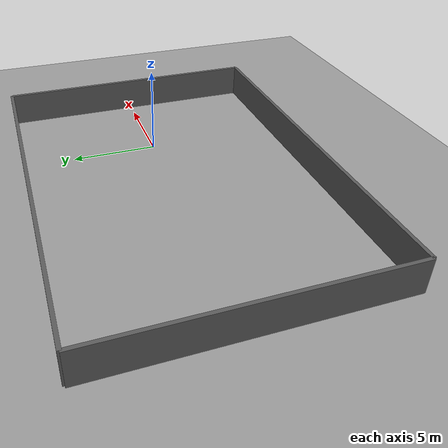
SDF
<sdf version="1.7">
 <world name="world_perc_walk">
  <physics name="10ms" type="ode">
   <max_step_size>0.01</max_step_size>
   <real_time_factor>1.0</real_time_factor>
  </physics>
  <plugin filename="libignition-gazebo-physics-system.so" name="ignition::gazebo::systems::Physics"/>
  <plugin filename="libignition-gazebo-scene-broadcaster-system.so" name="ignition::gazebo::systems::SceneBroadcaster"/>
  <plugin filename="libignition-gazebo-user-commands-system.so" name="ignition::gazebo::systems::UserCommands"/>
  <plugin filename="libignition-gazebo-sensors-system.so" name="ignition::gazebo::systems::Sensors">
   <render_engine>ogre2</render_engine>
  </plugin>
  <light name="sun" type="directional">
   <pose>0 0 20 0 0 0</pose>
   <diffuse>0.9 0.9 0.9 1</diffuse>
   <specular>0.3 0.3 0.3 1</specular>
   <attenuation>
    <range>1000</range>
    <constant>0.9</constant>
    <linear>0.01</linear>
    <quadratic>0.001</quadratic>
   </attenuation>
   <direction>-0.5 0.1 -0.9</direction>
  </light>
  <model name="ground_plane">
   <static>true</static>
   <link name="link">
    <collision name="collision">
     <geometry><plane><normal>0 0 1</normal><size>40 30</size></plane></geometry>
    </collision>
    <visual name="visual">
     <geometry><plane><normal>0 0 1</normal><size>40 30</size></plane></geometry>
     <material><ambient>0.6 0.6 0.6 1</ambient><diffuse>0.6 0.6 0.6 1</diffuse></material>
    </visual>
   </link>
  </model>
  <model name="wall_north">
   <static>true</static>
   <pose>-5 8 1 0 0 0</pose>
   <link name="link">
    <collision name="col"><geometry><box><size>22 0.2 2</size></box></geometry></collision>
    <visual name="vis">
     <geometry><box><size>22 0.2 2</size></box></geometry>
     <material><ambient>0.35 0.35 0.35 1</ambient><diffuse>0.35 0.35 0.35 1</diffuse></material>
    </visual>
   </link>
  </model>
  <model name="wall_south">
   <static>true</static>
   <pose>-5 -8 1 0 0 0</pose>
   <link name="link">
    <collision name="col"><geometry><box><size>22 0.2 2</size></box></geometry></collision>
    <visual name="vis">
     <geometry><box><size>22 0.2 2</size></box></geometry>
     <material><ambient>0.35 0.35 0.35 1</ambient><diffuse>0.35 0.35 0.35 1</diffuse></material>
    </visual>
   </link>
  </model>
  <model name="wall_east">
   <static>true</static>
   <pose>6 0 1 0 0 0</pose>
   <link name="link">
    <collision name="col"><geometry><box><size>0.2 16 2</size></box></geometry></collision>
    <visual name="vis">
     <geometry><box><size>0.2 16 2</size></box></geometry>
     <material><ambient>0.35 0.35 0.35 1</ambient><diffuse>0.35 0.35 0.35 1</diffuse></material>
    </visual>
   </link>
  </model>
  <model name="wall_west">
   <static>true</static>
   <pose>-16 0 1 0 0 0</pose>
   <link name="link">
    <collision name="col"><geometry><box><size>0.2 16 2</size></box></geometry></collision>
    <visual name="vis">
     <geometry><box><size>0.2 16 2</size></box></geometry>
     <material><ambient>0.35 0.35 0.35 1</ambient><diffuse>0.35 0.35 0.35 1</diffuse></material>
    </visual>
   </link>
  </model>
  <model name="human_1">
   <pose>-4.0 -6.0 0 0 0 1.5708</pose>
   <static>true</static>
   <link name="body">
    <collision name="col">
     <pose>0 0 0.85 0 0 0</pose>
     <geometry><cylinder><radius>0.35</radius><length>1.7</length></cylinder></geometry>
     <surface>
      <friction><ode><mu>0.6</mu><mu2>0.6</mu2></ode></friction>
      <contact><ode><kp>1e6</kp><kd>1.0</kd><max_vel>0.5</max_vel></ode></contact>
     </surface>
    </collision>
   </link>
   <plugin filename="__waypoints__" name="waypoints">
    <delay_start>1.0</delay_start>
    <loop>true</loop>
    <waypoint><time>0.0</time><pose>-4.0 -6.0 0 0 0 1.5708</pose></waypoint>
    <waypoint><time>10.0</time><pose>-4.0  6.0 0 0 0 1.5708</pose></waypoint>
    <waypoint><time>10.75</time><pose>-4.0  6.0 0 0 0 4.7124</pose></waypoint>
    <waypoint><time>20.75</time><pose>-4.0 -6.0 0 0 0 4.7124</pose></waypoint>
    <waypoint><time>21.5</time><pose>-4.0 -6.0 0 0 0 1.5708</pose></waypoint>
   </plugin>
  </model>
 </world>
</sdf>
